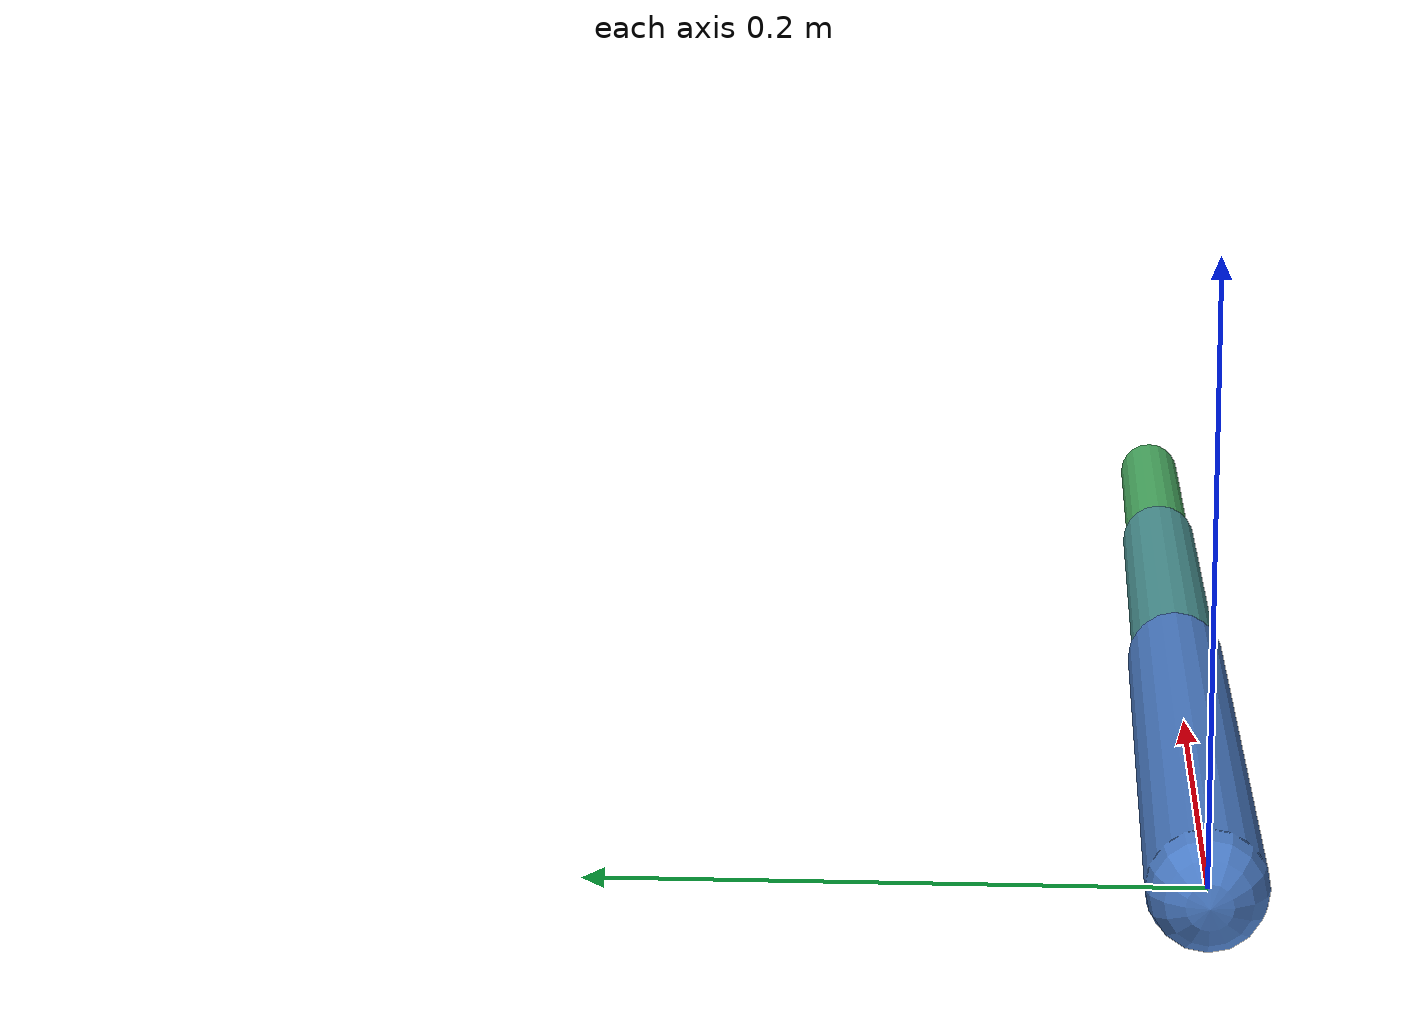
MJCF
<mujoco model="franka_planar3">
  <option timestep="0.01" gravity="0 0 0" integrator="Euler"/>
  <size nuser_geom="1"/>

  <!-- Varsayılan eklem sönümlemesi (damping) -->
  <default>
    <joint damping="1.0"/>
  </default>

  <visual><map znear="0.01" zfar="10"/></visual>

  <worldbody>
    <body name="base" pos="0 0 0">
      <joint name="j1" type="hinge" axis="0 0 1" range="-3.1416 3.1416"/>
      <geom name="link1" type="capsule" fromto="0 0 0  0.3 0 0" size="0.02" rgba="0.3 0.5 0.8 1"/>

      <body name="link2" pos="0.3 0 0">
        <joint name="j2" type="hinge" axis="0 0 1" range="-3.1416 3.1416"/>
        <geom name="link2" type="capsule" fromto="0 0 0  0.25 0 0" size="0.018" rgba="0.3 0.6 0.6 1"/>

        <body name="link3" pos="0.25 0 0">
          <joint name="j3" type="hinge" axis="0 0 1" range="-3.1416 3.1416"/>
          <geom name="link3" type="capsule" fromto="0 0 0  0.2 0 0" size="0.016" rgba="0.3 0.7 0.4 1"/>

          <body name="ee" pos="0.2 0 0">
            <site name="ee_site" pos="0 0 0" size="0.01" rgba="1 0 0 1"/>
          </body>
        </body>
      </body>
    </body>
  </worldbody>

  <!-- 3 eklem için hız aktüatörleri (MuJoCo 3.x: kv) -->
  <!-- kv'yi 0.2 yaparak agresifliği azaltıyoruz -->
  <actuator>
    <velocity name="v1" joint="j1" kv="0.2"/>
    <velocity name="v2" joint="j2" kv="0.2"/>
    <velocity name="v3" joint="j3" kv="0.2"/>
  </actuator>
</mujoco>
